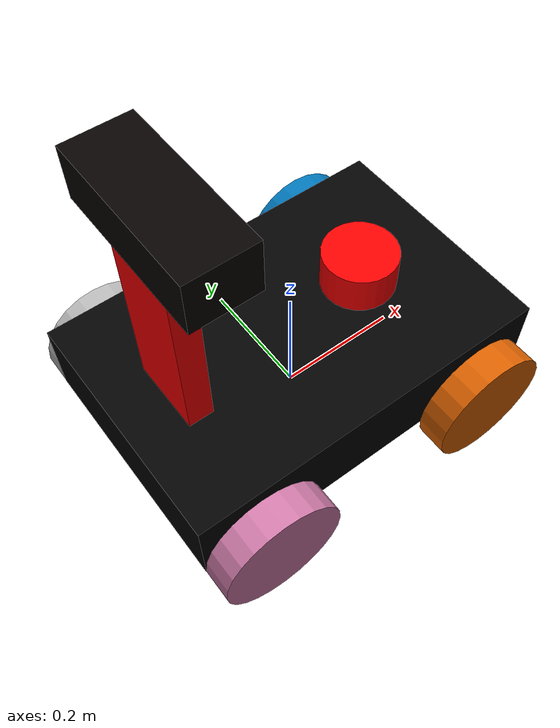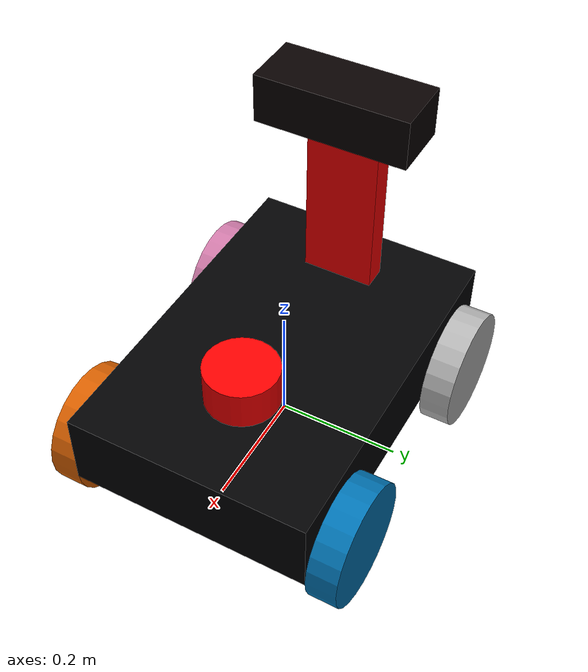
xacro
<?xml version="1.0"?>
<robot name="four_wheel_tower_robot" xmlns:xacro="http://www.ros.org/wiki/xacro">
    <xacro:include filename="$(find urdf_robots)/urdf/robot2.gazebo" />

    <link name="base_link" />
    <link name="chassis">
        <inertial>
            <origin xyz="0.0 0.0 0.0" rpy="0.0 0.0 0.0" />
            <mass value="5.0" />
            <inertia ixx="1.0" ixy="0.0" ixz="0.0" iyy="1.0" iyz="0.0" izz="1.0" />
        </inertial>
        <visual name="">
            <origin xyz="0.0 0.0 0.09" rpy="0.0 0.0 0.0" />
            <geometry>
                <box size="0.6 0.4 0.13" />
            </geometry>
            <material name="">
                <color rgba="1.0 1.3 2.0 1.0"/>
                <texture filename=""/>
            </material>
        </visual>
        <collision>
            <origin xyz="0.0 0.0 0.0" rpy="0.0 0.0 0.0" />
            <geometry>
                <box size="0.6 0.4 0.1" />
            </geometry>
        </collision>
    </link>
    <joint name="base_joint" type="fixed">
        <origin xyz="0.0 0.0 0.0" rpy="0.0 0.0 0.0" />
        <parent link="base_link" />
        <child link="chassis" />
    </joint>

<!--camera link-->
    <link name="camera">
        <inertial>
            <origin xyz="0.0 0.0 0.0" rpy="0.0 0.0 0.0"/>
            <mass value="0.0"/>
            <inertia ixx="1.0" ixy="0.0" ixz="0.0" iyy="1.0" iyz="0.0" izz="1.0"/>
        </inertial>
        <visual name="">
            <origin xyz="-0.18 0.0 0.49" rpy="0.0 0.0 0.0"/>
            <geometry>
                <box size="0.1 0.25 0.08"/>
            </geometry>
            <material name="">
                <color rgba="6.0 0.0 0.0 0.9"/>
                <texture filename=""/>
            </material>
        </visual>
        <collision>
            <origin xyz="-0.2 0.0 0.5" rpy="0.0 0.0 0.0"/>
            <geometry>
                <box size="0.15 0.25 0.1"/>
            </geometry>
        </collision>
    </link>
    <joint name="camera_to_tower_joint" type="fixed">
        <origin xyz="0.0 0.0 0.0" rpy="0.0 0.0 0.0"/>
        <parent link="camera_tower"/>
        <child link="camera"/>
        <axis xyz="0.0 0.0 0.0"/>
        <limit lower="0.0" upper="0.0" effort="0.0" velocity="0.0"/>
    </joint>

<!--camera tower-->

    <link name="camera_tower">
        <inertial>
            <origin xyz="0.0 0.0 0.0" rpy="0.0 0.0 0.0"/>
            <mass value="0.0"/>
            <inertia ixx="1.0" ixy="0.0" ixz="0.0" iyy="1.0" iyz="0.0" izz="1.0"/>
        </inertial>
        <visual name="">
            <origin xyz="-0.2 0.0 0.3" rpy="0.0 0.0 0.0"/>
            <geometry>
                <box size="0.04 0.12 0.3"/>
            </geometry>
            <material name="">
                <color rgba="1.0 0.0 0.0 1.0"/>
                <texture filename=""/>
            </material>
        </visual>
        <collision>
            <origin xyz="-0.2 0.0 0.3" rpy="0.0 0.0 0.0"/>
            <geometry>
                <box size="0.06 0.15 0.3"/>
            </geometry>
        </collision>
    </link>
    <joint name="chassis_to_tower_joint" type="fixed">
        <origin xyz="0.0 0.0 0.0" rpy="0.0 0.0 0.0"/>
        <parent link="chassis"/>
        <child link="camera_tower"/>
        <axis xyz="0.0 0.0 0.0"/>
    </joint>

<!--right wheel front-->

<link name="right_wheel_front">
        <inertial>
            <origin xyz="0.0 0.0 0.0" rpy="0.0 0.0 0.0" />
            <mass value="1.0" />
            <inertia ixx="1.0" ixy="0.0" ixz="0.0" iyy="1.0" iyz="0.0" izz="1.0" />
        </inertial>
        <visual name="">
            <origin xyz="0.2 0.425 0.0" rpy="1.5705 0.0 0.0" />
            <geometry>
                <cylinder radius="0.1" length="0.05" />
            </geometry>

        </visual>
        <collision>
            <origin xyz="0.0 0.0 0.0" rpy="0.0 0.0 0.0" />
            <geometry>
                <cylinder radius="0.1" length="0.05" />
            </geometry>
        </collision>
    </link>
    <joint name="right_wheel_front_joint" type="continuous">
        <origin xyz="0.0 -0.2 0.03" rpy="0.0 0.0 0.0" />
        <parent link="chassis" />
        <child link="right_wheel_front" />
        <axis xyz="0.0 0.0 0.0" />
    </joint>

<!--left wheel front-->

    <link name="left_wheel_front">
        <inertial>
            <origin xyz="0.0 0.0 0.0" rpy="0.0 0.0 0.0" />
            <mass value="1.0" />
            <inertia ixx="1.0" ixy="0.0" ixz="0.0" iyy="1.0" iyz="0.0" izz="1.0" />
        </inertial>
        <visual name="">
            <origin xyz="0.2 -0.425 0.0" rpy="1.5705 0.0 0.0" />
            <geometry>
                <cylinder radius="0.1" length="0.05" />
            </geometry>

        </visual>
        <collision>
            <origin xyz="0.0 0.0 0.0" rpy="0.0 0.0 0.0" />
            <geometry>
                <cylinder radius="0.1" length="0.05" />
            </geometry>
        </collision>
    </link>
    <joint name="left_wheel__front_joint" type="continuous">
        <origin xyz="0.0 0.2 0.03" rpy="0.0 0.0 0.0" />
        <parent link="chassis" />
        <child link="left_wheel_front" />
        <axis xyz="0.0 0.0 0.0" />
    </joint>

<!--leftt wheel back-->

    <link name="left_wheel_back">
        <inertial>
            <origin xyz="0.0 0.0 0.0" rpy="0.0 0.0 0.0" />
            <mass value="1.0" />
            <inertia ixx="1.0" ixy="0.0" ixz="0.0" iyy="1.0" iyz="0.0" izz="1.0" />
        </inertial>
        <visual name="">
            <origin xyz="-0.2 -0.425 0.0" rpy="1.5705 0.0 0.0" />
            <geometry>
                <cylinder radius="0.1" length="0.05" />
            </geometry>

        </visual>
        <collision>
            <origin xyz="0.0 0.0 0.0" rpy="0.0 0.0 0.0" />
            <geometry>
                <cylinder radius="0.1" length="0.05" />
            </geometry>
        </collision>
    </link>
    <joint name="left_wheel_joint_back" type="continuous">
        <origin xyz="0.0 0.2 0.03" rpy="0.0 0.0 0.0" />
        <parent link="chassis" />
        <child link="left_wheel_back" />
        <axis xyz="0.0 0.0 0.0" />
    </joint>

<!--right wheel back-->

    <link name="right_wheel_rear">
        <inertial>
            <origin xyz="0.0 0.0 0.0" rpy="0.0 0.0 0.0" />
            <mass value="1.0" />
            <inertia ixx="1.0" ixy="0.0" ixz="0.0" iyy="1.0" iyz="0.0" izz="1.0" />
        </inertial>
        <visual name="">
            <origin xyz="-0.2 0.025 0.0" rpy="1.5705 0.0 0.0" />
            <geometry>
                <cylinder radius="0.1" length="0.05" />
            </geometry>

        </visual>
        <collision>
            <origin xyz="0.0 0.0 0.0" rpy="0.0 0.0 0.0" />
            <geometry>
                <cylinder radius="0.1" length="0.05" />
            </geometry>
        </collision>
    </link>
    <joint name="right_wheel_joint_rear" type="continuous">
        <origin xyz="0.0 0.2 0.03" rpy="0.0 0.0 0.0" />
        <parent link="chassis" />
        <child link="right_wheel_rear" />
        <axis xyz="0.0 0.0 0.0" />
    </joint>

<!-- Attached Lider-->
       <link name="lider_link">
        <inertial>
            <origin xyz="0.0 0.0 0.0" rpy="0.0 0.0 0.0"/>
            <mass value="0.0"/>
            <inertia ixx="1.0" ixy="0.0" ixz="0.0" iyy="1.0" iyz="0.0" izz="1.0"/>
        </inertial>
        <visual name="">
            <origin xyz="0.13 0.0 0.18" rpy="0.0 0.0 0.0"/>
            <geometry>
                <cylinder radius="0.06" length="0.08"/>
            </geometry>
            <material name="">
                <color rgba="1.0 0.0 0.0 1.0"/>
                <texture filename=""/>
            </material>
        </visual>
        <collision>
            <origin xyz="0.13 0.0 0.2" rpy="0.0 0.0 0.0"/>
            <geometry>
                <cylinder radius="0.06" length="0.08"/>
            </geometry>
        </collision>
       </link>
       <joint name="lider_joint" type="fixed">
        <origin xyz="0.0 0.0 0.0" rpy="0.0 0.0 0.0"/>
        <parent link="chassis"/>
        <child link="lider_link"/>
       </joint>
</robot>
